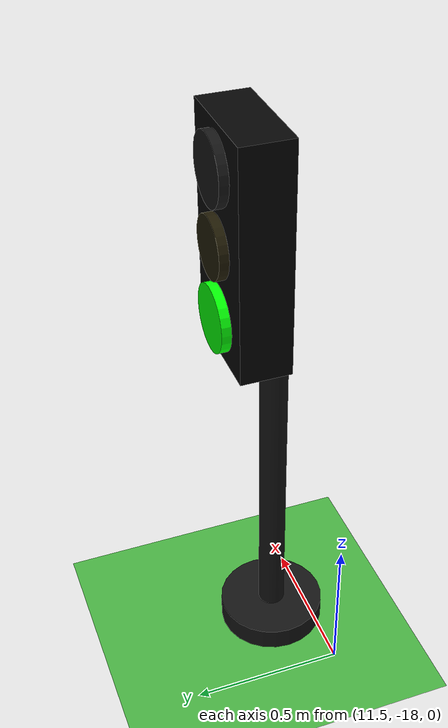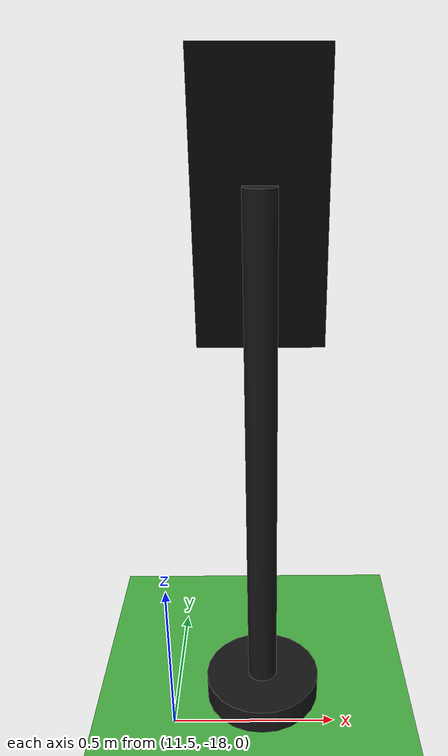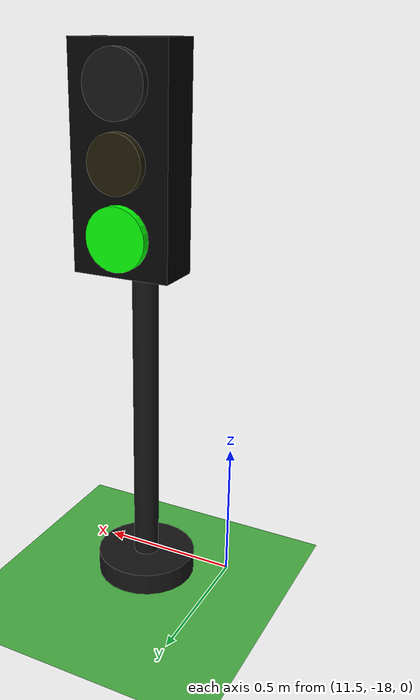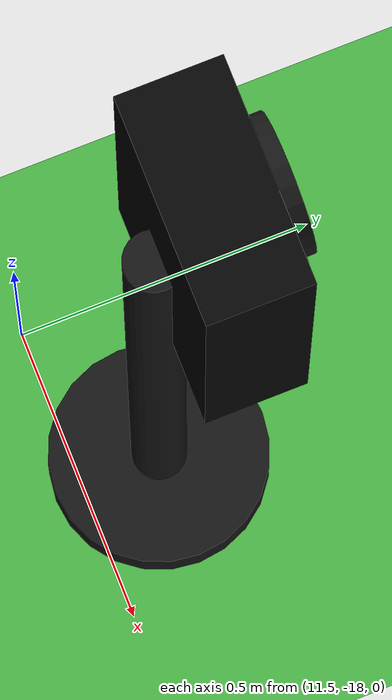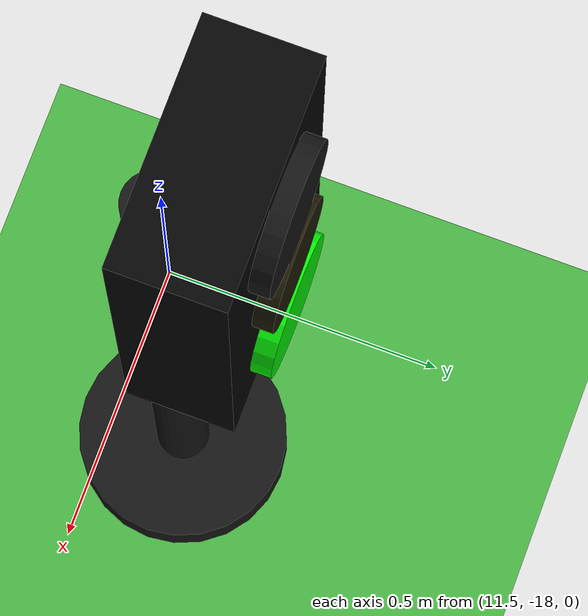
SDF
<sdf version="1.10">
 <world name="city_second">
  <model name="ground_plane">
   <static>true</static>
   <link name="link">
    <collision name="collision">
     <geometry><plane><normal>0 0 1</normal><size>300 300</size></plane></geometry>
    </collision>
    <visual name="visual">
     <geometry><plane><normal>0 0 1</normal><size>300 300</size></plane></geometry>
     <material>
      <ambient>0.280000001 0.689999998 0.25999999 1</ambient>
      <diffuse>0.280000001 0.689999998 0.25999999 1</diffuse>
      <specular>0.0299999993 0.0299999993 0.0299999993 1</specular>
     </material>
    </visual>
    <inertial>
     <mass>1</mass>
     <inertia><ixx>1</ixx><ixy>0</ixy><ixz>0</ixz><iyy>1</iyy><iyz>0</iyz><izz>1</izz></inertia>
    </inertial>
   </link>
  </model>
  <model name="simple_traffic_light_green_north_1_2">
   <static>true</static>
   <pose>11.777170378205799 -17.868153238986416 0 0 0 0</pose>
   <link name="base">
    <pose>0 0 0.040000000000000001 0 0 0</pose>
    <collision name="collision">
     <geometry>
      <cylinder><radius>0.17999999999999999</radius><length>0.080000000000000002</length></cylinder>
     </geometry>
    </collision>
    <visual name="visual">
     <geometry>
      <cylinder><radius>0.17999999999999999</radius><length>0.080000000000000002</length></cylinder>
     </geometry>
     <material>
      <ambient>0.0799999982 0.0799999982 0.0799999982 1</ambient>
      <diffuse>0.0799999982 0.0799999982 0.0799999982 1</diffuse>
      <specular>0.150000006 0.150000006 0.150000006 1</specular>
      <emissive>0 0 0 1</emissive>
     </material>
    </visual>
    <inertial>
     <mass>1</mass>
     <inertia><ixx>1</ixx><ixy>0</ixy><ixz>0</ixz><iyy>1</iyy><iyz>0</iyz><izz>1</izz></inertia>
    </inertial>
   </link>
   <link name="pole">
    <pose>0 0 0.80000000000000004 0 0 0</pose>
    <collision name="collision">
     <geometry>
      <cylinder><radius>0.044999999999999998</radius><length>1.6000000000000001</length></cylinder>
     </geometry>
    </collision>
    <visual name="visual">
     <geometry>
      <cylinder><radius>0.044999999999999998</radius><length>1.6000000000000001</length></cylinder>
     </geometry>
     <material>
      <ambient>0.0799999982 0.0799999982 0.0799999982 1</ambient>
      <diffuse>0.0799999982 0.0799999982 0.0799999982 1</diffuse>
      <specular>0.150000006 0.150000006 0.150000006 1</specular>
      <emissive>0 0 0 1</emissive>
     </material>
    </visual>
    <inertial>
     <mass>1</mass>
     <inertia><ixx>1</ixx><ixy>0</ixy><ixz>0</ixz><iyy>1</iyy><iyz>0</iyz><izz>1</izz></inertia>
    </inertial>
   </link>
   <link name="signal_box">
    <pose>0 0.089999999999999858 1.55 0 0 0</pose>
    <collision name="collision">
     <geometry><box><size>0.34000000000000002 0.16 0.71999999999999997</size></box></geometry>
    </collision>
    <visual name="visual">
     <geometry><box><size>0.34000000000000002 0.16 0.71999999999999997</size></box></geometry>
     <material>
      <ambient>0.0199999996 0.0199999996 0.0199999996 1</ambient>
      <diffuse>0.0199999996 0.0199999996 0.0199999996 1</diffuse>
      <specular>0.150000006 0.150000006 0.150000006 1</specular>
      <emissive>0 0 0 1</emissive>
     </material>
    </visual>
    <inertial>
     <mass>1</mass>
     <inertia><ixx>1</ixx><ixy>0</ixy><ixz>0</ixz><iyy>1</iyy><iyz>0</iyz><izz>1</izz></inertia>
    </inertial>
   </link>
   <link name="red_lens">
    <pose>0 0.18100000000000094 1.78 1.5707963268000003 0 0</pose>
    <collision name="collision">
     <geometry><cylinder><radius>0.105</radius><length>0.035000000000000003</length></cylinder></geometry>
    </collision>
    <visual name="visual">
     <geometry><cylinder><radius>0.105</radius><length>0.035000000000000003</length></cylinder></geometry>
     <material>
      <ambient>0.0799999982 0.0799999982 0.0799999982 1</ambient>
      <diffuse>0.0799999982 0.0799999982 0.0799999982 1</diffuse>
      <specular>0.150000006 0.150000006 0.150000006 1</specular>
      <emissive>0 0 0 1</emissive>
     </material>
    </visual>
    <inertial>
     <mass>1</mass>
     <inertia><ixx>1</ixx><ixy>0</ixy><ixz>0</ixz><iyy>1</iyy><iyz>0</iyz><izz>1</izz></inertia>
    </inertial>
   </link>
   <link name="yellow_lens">
    <pose>0 0.18199999999999861 1.55 1.5707963268000003 0 0</pose>
    <collision name="collision">
     <geometry>
      <cylinder><radius>0.095000000000000001</radius><length>0.035000000000000003</length></cylinder>
     </geometry>
    </collision>
    <visual name="visual">
     <geometry>
      <cylinder><radius>0.095000000000000001</radius><length>0.035000000000000003</length></cylinder>
     </geometry>
     <material>
      <ambient>0.119999997 0.100000001 0.0199999996 1</ambient>
      <diffuse>0.119999997 0.100000001 0.0199999996 1</diffuse>
      <specular>0.150000006 0.150000006 0.150000006 1</specular>
      <emissive>0 0 0 1</emissive>
     </material>
    </visual>
    <inertial>
     <mass>1</mass>
     <inertia><ixx>1</ixx><ixy>0</ixy><ixz>0</ixz><iyy>1</iyy><iyz>0</iyz><izz>1</izz></inertia>
    </inertial>
   </link>
   <link name="green_lens">
    <pose>0 0.18299999999999983 1.3200000000000001 1.5707963268000003 0 0</pose>
    <collision name="collision">
     <geometry><cylinder><radius>0.105</radius><length>0.035000000000000003</length></cylinder></geometry>
    </collision>
    <visual name="visual">
     <geometry><cylinder><radius>0.105</radius><length>0.035000000000000003</length></cylinder></geometry>
     <material>
      <ambient>0.0199999996 1 0.0199999996 1</ambient>
      <diffuse>0.0199999996 1 0.0199999996 1</diffuse>
      <specular>0.150000006 0.150000006 0.150000006 1</specular>
      <emissive>0.0199999996 1 0.0199999996 1</emissive>
     </material>
    </visual>
    <inertial>
     <mass>1</mass>
     <inertia><ixx>1</ixx><ixy>0</ixy><ixz>0</ixz><iyy>1</iyy><iyz>0</iyz><izz>1</izz></inertia>
    </inertial>
   </link>
  </model>
 </world>
</sdf>
